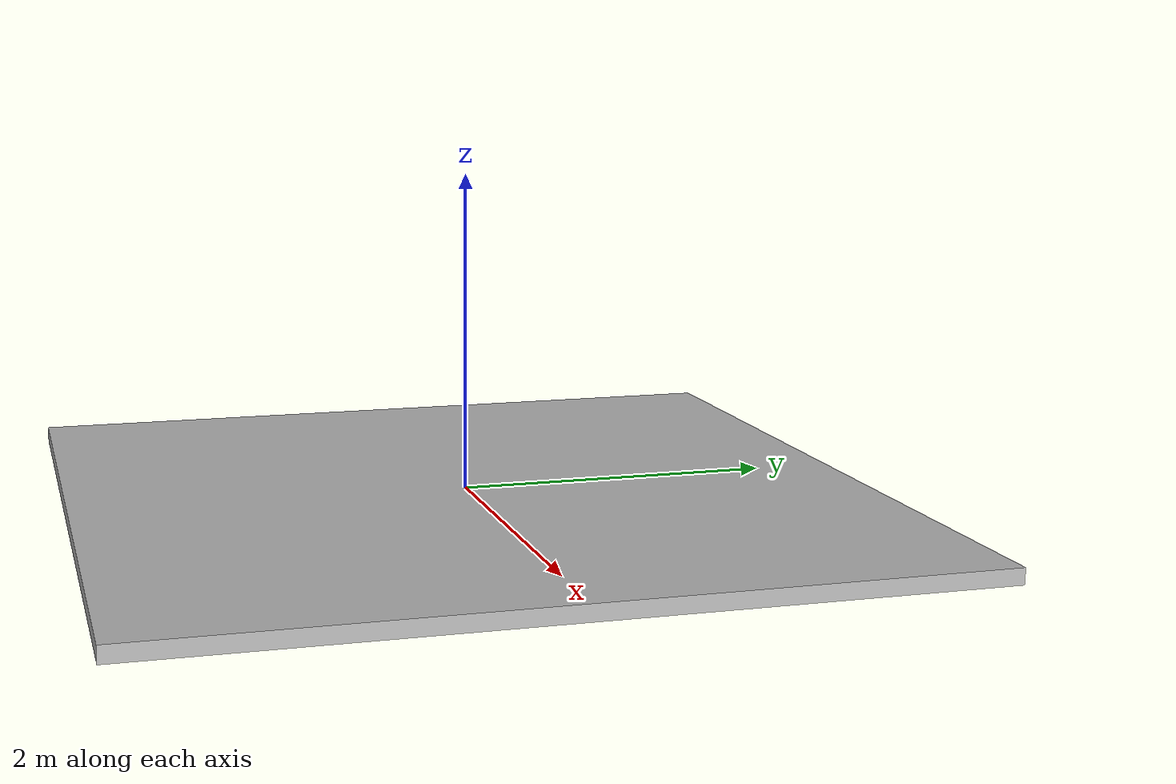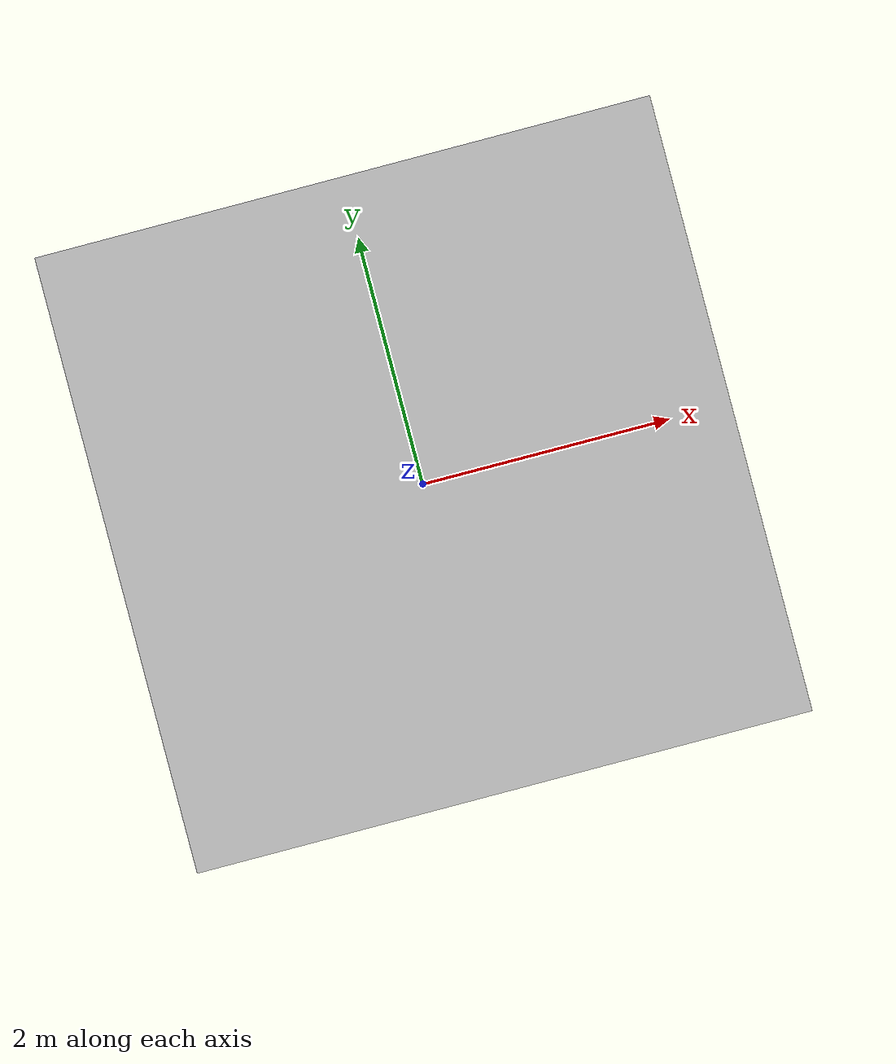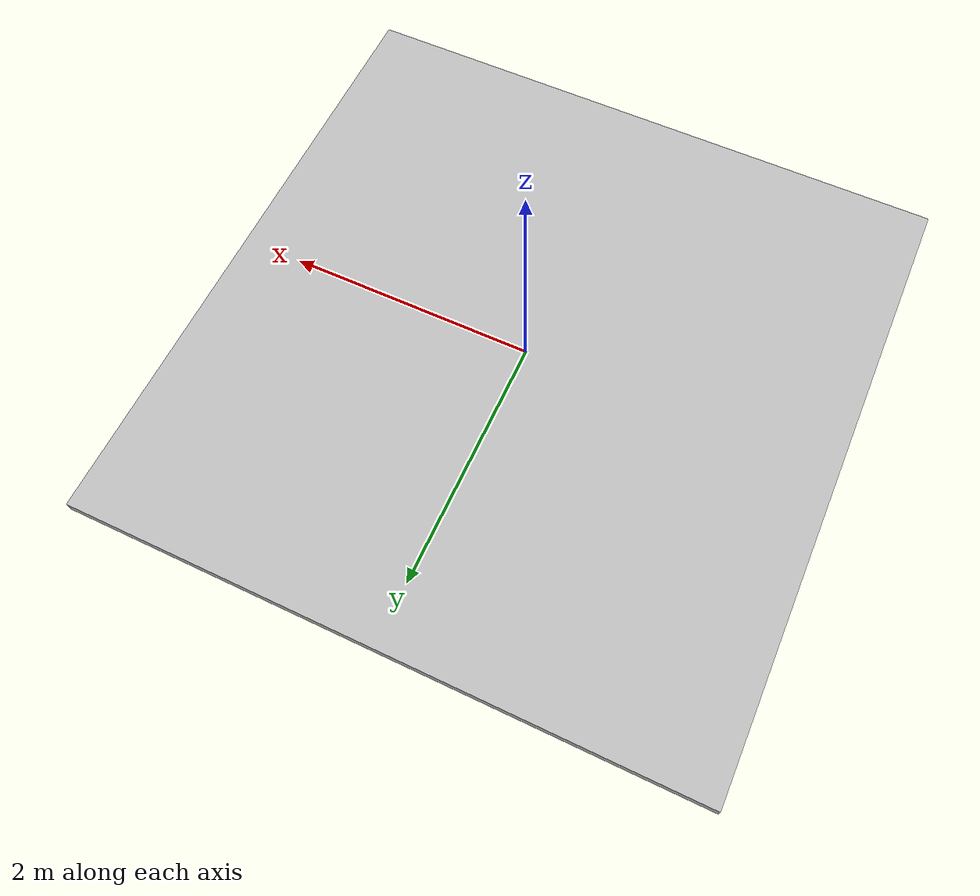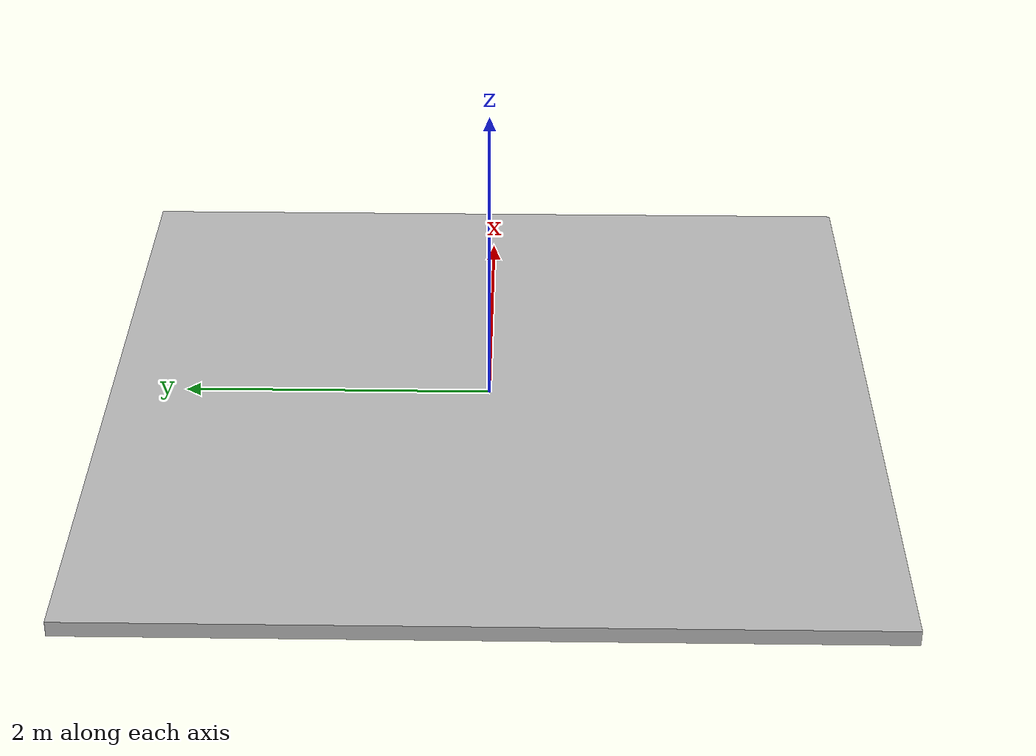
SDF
<?xml version='1.0'?>
<sdf version='1.7'>
  <model name='box_floor'>
    <link name='link'>
      <pose>0 0 -0.05 0 0 0</pose>
      <inertial>
        <mass>1</mass>
        <inertia>
          <ixx>0.166667</ixx>
          <ixy>0</ixy>
          <ixz>0</ixz>
          <iyy>0.166667</iyy>
          <iyz>0</iyz>
          <izz>0.166667</izz>
        </inertia>
      </inertial>
      <visual name='visual'>
        <geometry>
          <box>
            <size>5 5 0.1</size>
          </box>
        </geometry>
        <material>
            <script>
                <uri>model://my_ground_plane/concrete.material</uri>
                <name>ConcreteTexture</name>
            </script>
        </material>
      </visual>
      <collision name='collision'>
        <geometry>
          <box>
            <size>5 5 0.1</size>
          </box>
        </geometry>
      </collision>
    </link>
    <static>1</static>
    <allow_auto_disable>1</allow_auto_disable>
  </model>
</sdf>
